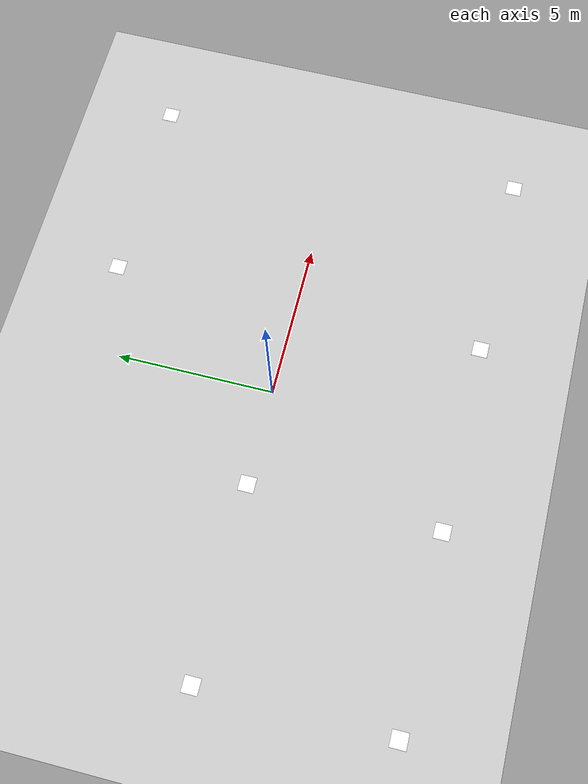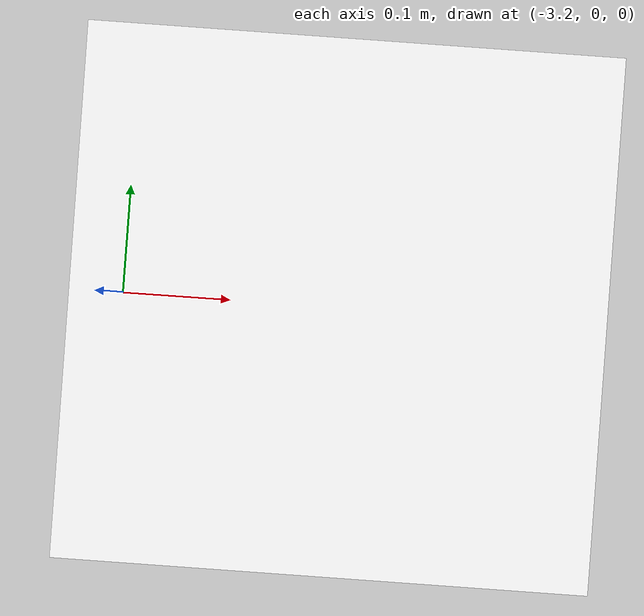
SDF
<sdf version="1.9">
 <world name="aruco_multi">
  <physics type="ode">
   <max_step_size>0.004</max_step_size>
   <real_time_factor>1.0</real_time_factor>
   <real_time_update_rate>250</real_time_update_rate>
  </physics>
  <gravity>0 0 -9.8</gravity>
  <magnetic_field>6e-06 2.3e-05 -4.2e-05</magnetic_field>
  <atmosphere type="adiabatic"/>
  <scene>
   <grid>false</grid>
   <ambient>0.4 0.4 0.4 1</ambient>
   <background>0.7 0.7 0.7 1</background>
   <shadows>true</shadows>
  </scene>
  <model name="ground_plane">
   <static>true</static>
   <link name="link">
    <collision name="collision">
     <geometry><plane><normal>0 0 1</normal><size>30 30</size></plane></geometry>
    </collision>
    <visual name="visual">
     <geometry><plane><normal>0 0 1</normal><size>30 30</size></plane></geometry>
     <material>
      <ambient>0.8 0.8 0.8 1</ambient>
      <diffuse>0.8 0.8 0.8 1</diffuse>
      <specular>0.2 0.2 0.2 1</specular>
     </material>
    </visual>
   </link>
  </model>
  <light name="sunUTC" type="directional">
   <pose>0 0 500 0 0 0</pose>
   <intensity>1</intensity>
   <direction>0.001 0.625 -0.78</direction>
   <diffuse>0.904 0.904 0.904 1</diffuse>
   <specular>0.271 0.271 0.271 1</specular>
   <attenuation><range>2000</range><linear>0</linear><constant>1</constant><quadratic>0</quadratic></attenuation>
   <spot><inner_angle>0</inner_angle><outer_angle>0</outer_angle><falloff>0</falloff></spot>
  </light>
  <spherical_coordinates>
   <surface_model>EARTH_WGS84</surface_model>
   <world_frame_orientation>ENU</world_frame_orientation>
   <latitude_deg>47.397971057728974</latitude_deg>
   <longitude_deg>8.546163739800146</longitude_deg>
   <elevation>0</elevation>
  </spherical_coordinates>
  <include><name>aruco_0</name><uri>model://aruco_0</uri><pose>-9 -6 0.003 0 0 0</pose></include>
  <include><name>aruco_1</name><uri>model://aruco_1</uri><pose>-3 -6 0.003 0 0 0</pose></include>
  <include><name>aruco_2</name><uri>model://aruco_2</uri><pose>3 -6 0.003 0 0 0</pose></include>
  <include><name>aruco_3</name><uri>model://aruco_3</uri><pose>9 -6 0.003 0 0 0</pose></include>
  <include><name>aruco_4</name><uri>model://aruco_4</uri><pose>-9 0 0.003 0 0 1.570796</pose></include>
  <include><name>aruco_5</name><uri>model://aruco_5</uri><pose>-3 0 0.003 0 0 1.570796</pose></include>
  <include><name>aruco_10</name><uri>model://aruco_10</uri><pose>3 6 0.003 0 0 3.141593</pose></include>
  <include><name>aruco_11</name><uri>model://aruco_11</uri><pose>9 6 0.003 0 0 3.141593</pose></include>
 </world>
</sdf>

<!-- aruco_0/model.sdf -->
<sdf version="1.9">
  <model name="aruco_0">
    <static>true</static>
    <link name="base">
      <visual name="marker_visual">
        <geometry>
          <plane>
            <normal>0 0 1</normal>
            <size>0.5 0.5</size>
          </plane>
        </geometry>
        <material>
          <diffuse>1 1 1 1</diffuse>
          <specular>0.1 0.1 0.1 1</specular>
          <pbr>
            <metal>
              <albedo_map>model://aruco_0/aruco_0.png</albedo_map>
            </metal>
          </pbr>
        </material>
      </visual>
    </link>
  </model>
</sdf>

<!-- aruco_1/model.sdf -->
<sdf version="1.9">
  <model name="aruco_1">
    <static>true</static>
    <link name="base">
      <visual name="marker_visual">
        <geometry>
          <plane>
            <normal>0 0 1</normal>
            <size>0.5 0.5</size>
          </plane>
        </geometry>
        <material>
          <diffuse>1 1 1 1</diffuse>
          <specular>0.1 0.1 0.1 1</specular>
          <pbr>
            <metal>
              <albedo_map>model://aruco_1/aruco_1.png</albedo_map>
            </metal>
          </pbr>
        </material>
      </visual>
    </link>
  </model>
</sdf>

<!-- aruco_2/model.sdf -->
<sdf version="1.9">
  <model name="aruco_2">
    <static>true</static>
    <link name="base">
      <visual name="marker_visual">
        <geometry>
          <plane>
            <normal>0 0 1</normal>
            <size>0.5 0.5</size>
          </plane>
        </geometry>
        <material>
          <diffuse>1 1 1 1</diffuse>
          <specular>0.1 0.1 0.1 1</specular>
          <pbr>
            <metal>
              <albedo_map>model://aruco_2/aruco_2.png</albedo_map>
            </metal>
          </pbr>
        </material>
      </visual>
    </link>
  </model>
</sdf>

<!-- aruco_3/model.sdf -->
<sdf version="1.9">
  <model name="aruco_3">
    <static>true</static>
    <link name="base">
      <visual name="marker_visual">
        <geometry>
          <plane>
            <normal>0 0 1</normal>
            <size>0.5 0.5</size>
          </plane>
        </geometry>
        <material>
          <diffuse>1 1 1 1</diffuse>
          <specular>0.1 0.1 0.1 1</specular>
          <pbr>
            <metal>
              <albedo_map>model://aruco_3/aruco_3.png</albedo_map>
            </metal>
          </pbr>
        </material>
      </visual>
    </link>
  </model>
</sdf>

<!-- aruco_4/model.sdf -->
<sdf version="1.9">
  <model name="aruco_4">
    <static>true</static>
    <link name="base">
      <visual name="marker_visual">
        <geometry>
          <plane>
            <normal>0 0 1</normal>
            <size>0.5 0.5</size>
          </plane>
        </geometry>
        <material>
          <diffuse>1 1 1 1</diffuse>
          <specular>0.1 0.1 0.1 1</specular>
          <pbr>
            <metal>
              <albedo_map>model://aruco_4/aruco_4.png</albedo_map>
            </metal>
          </pbr>
        </material>
      </visual>
    </link>
  </model>
</sdf>

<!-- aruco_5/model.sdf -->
<sdf version="1.9">
  <model name="aruco_5">
    <static>true</static>
    <link name="base">
      <visual name="marker_visual">
        <geometry>
          <plane>
            <normal>0 0 1</normal>
            <size>0.5 0.5</size>
          </plane>
        </geometry>
        <material>
          <diffuse>1 1 1 1</diffuse>
          <specular>0.1 0.1 0.1 1</specular>
          <pbr>
            <metal>
              <albedo_map>model://aruco_5/aruco_5.png</albedo_map>
            </metal>
          </pbr>
        </material>
      </visual>
    </link>
  </model>
</sdf>

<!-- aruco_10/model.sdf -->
<sdf version="1.9">
  <model name="aruco_10">
    <static>true</static>
    <link name="base">
      <visual name="marker_visual">
        <geometry>
          <plane>
            <normal>0 0 1</normal>
            <size>0.5 0.5</size>
          </plane>
        </geometry>
        <material>
          <diffuse>1 1 1 1</diffuse>
          <specular>0.1 0.1 0.1 1</specular>
          <pbr>
            <metal>
              <albedo_map>model://aruco_10/aruco_10.png</albedo_map>
            </metal>
          </pbr>
        </material>
      </visual>
    </link>
  </model>
</sdf>

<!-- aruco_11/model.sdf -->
<sdf version="1.9">
  <model name="aruco_11">
    <static>true</static>
    <link name="base">
      <visual name="marker_visual">
        <geometry>
          <plane>
            <normal>0 0 1</normal>
            <size>0.5 0.5</size>
          </plane>
        </geometry>
        <material>
          <diffuse>1 1 1 1</diffuse>
          <specular>0.1 0.1 0.1 1</specular>
          <pbr>
            <metal>
              <albedo_map>model://aruco_11/aruco_11.png</albedo_map>
            </metal>
          </pbr>
        </material>
      </visual>
    </link>
  </model>
</sdf>
